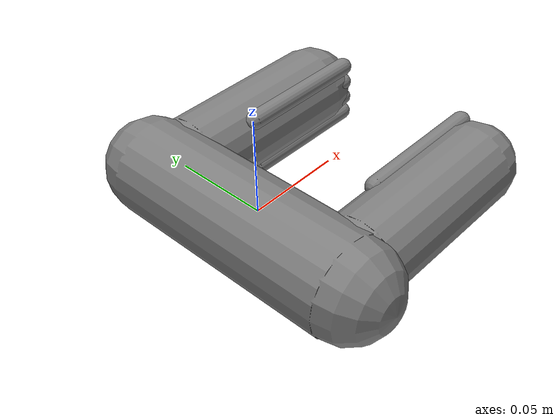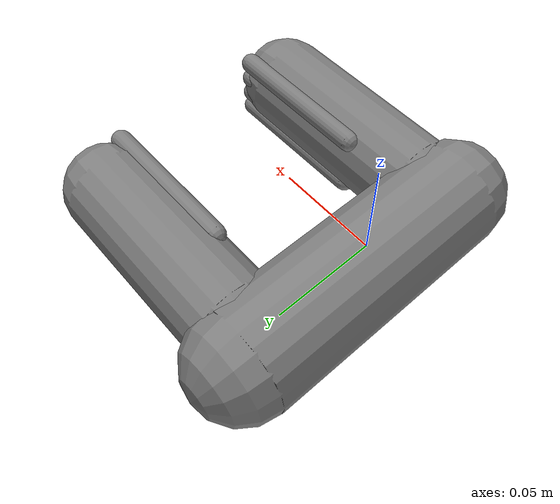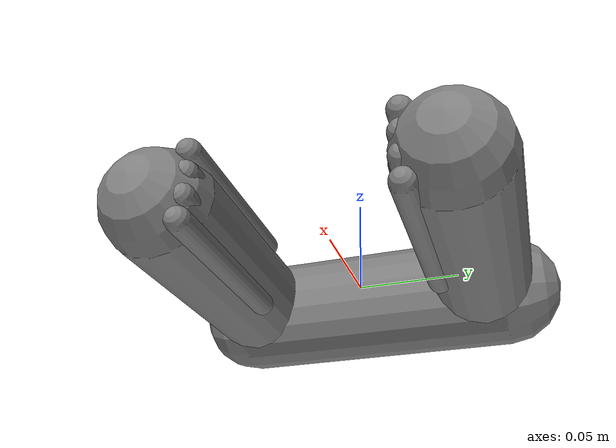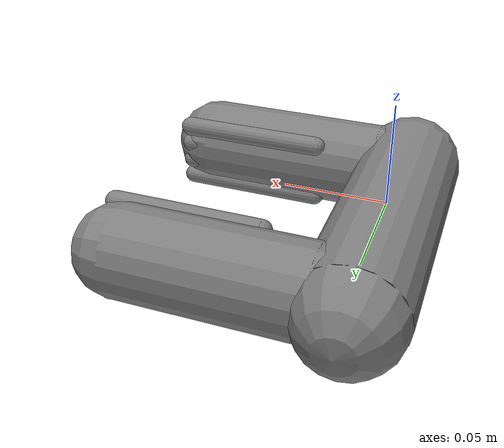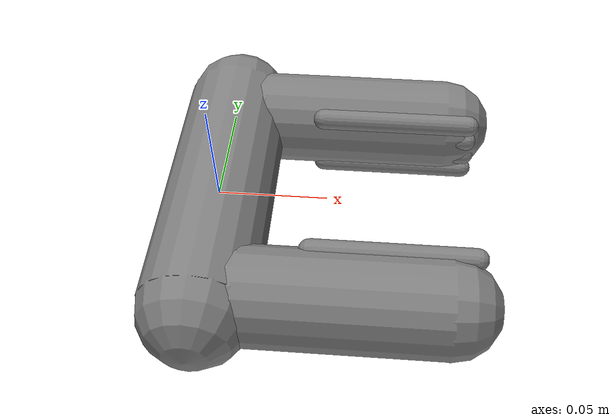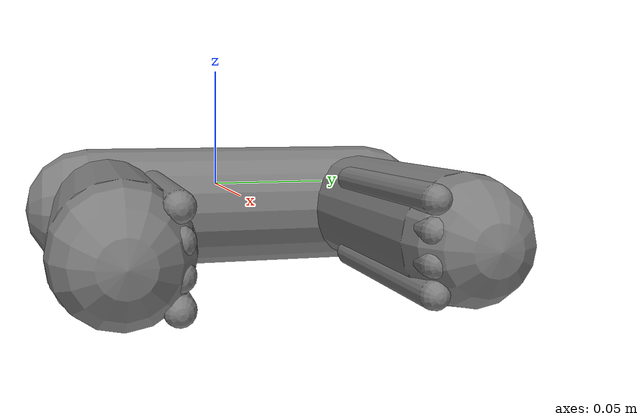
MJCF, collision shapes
<?xml version="1.0" ?>
<mujoco model="parallel_gripper">
  <compiler angle="radian" meshdir="meshes" autolimits="true"/>
  <default>
    <default class="parallel_gripper">
      <default class="visual">
        <geom group="2" type="mesh" contype="0" conaffinity="0" material="silver"/>
      </default>
      <default class="collision">
        <geom group="3" contype="1" conaffinity="1"/>
      </default>
    </default>
  </default>
  <asset>
    <material name="silver" rgba="0.75 0.75 0.75 1"/>
    <material name="base_mat" rgba="0.38 0.38 0.38 1" specular="0.15" shininess="0.1"/>
    <material name="left_rack_mat" rgba="0.3 0.31 0.34 1" specular="0.05" shininess="0.05"/>
    <material name="right_rack_mat" rgba="0.33 0.3 0.34 1" specular="0.05" shininess="0.05"/>
    <mesh name="base" file="base.obj" scale="0.001 0.001 0.001"/>
    <mesh name="left_rack" file="left_rack.obj" scale="0.001 0.001 0.001"/>
    <mesh name="right_rack" file="right_rack.obj" scale="0.001 0.001 0.001"/>
  </asset>
  <worldbody>
    <body name="base" childclass="parallel_gripper">
      <inertial mass="0.171609431065" pos="0.000733468 0.0119563 -0.00964551" diaginertia="4.99918e-05 0.000207737 0.000223325" quat="0.725257 0.023573 0.00705184 -0.688038"/>
      <geom name="base_visual" type="mesh" mesh="base" pos="0 0 0" class="visual" material="base_mat"/>
      <geom type="capsule" size="0.026 0.064" name="base_collision" pos="-0.0017 0.0075 -0.01" quat="0.707107 -0.707107 -0 0" class="collision"/>
      <body name="left_rack" pos="0 0 0">
        <inertial mass="0.07436563558" pos="0.0462025 -0.0220002 -0.00385734" diaginertia="4.74015e-05 0.00012138 0.000153873" quat="-0.0935321 0.426555 0.899548 0.0108181"/>
        <joint name="left_rack_y" type="slide" pos="0 0 0" axis="0 1 0" range="-0.05 0.0347" damping="12.0" armature="0.02"/>
        <geom name="left_rack_visual" type="mesh" mesh="left_rack" pos="0 0 0" class="visual" material="left_rack_mat"/>
        <geom type="capsule" size="0.005 0.035800000000000005" name="left_rack_collision0" pos="0.0808 -0.033 -0.0249897" quat="0.707107 -0 0.707107 0" class="collision" conaffinity="0" friction="2 0.005 0.0001" solref="0.005 1"/>
        <geom type="capsule" size="0.005 0.035800000000000005" name="left_rack_collision1" pos="0.0808 -0.033 -0.0149966" quat="0.707107 -0 0.707107 0" class="collision" conaffinity="0" friction="2 0.005 0.0001" solref="0.005 1"/>
        <geom type="capsule" size="0.005 0.035800000000000005" name="left_rack_collision2" pos="0.0808 -0.033 -0.00500342" quat="0.707107 -0 0.707107 0" class="collision" conaffinity="0" friction="2 0.005 0.0001" solref="0.005 1"/>
        <geom type="capsule" size="0.005 0.035800000000000005" name="left_rack_collision3" pos="0.0808 -0.033 0.00498975" quat="0.707107 -0 0.707107 0" class="collision" conaffinity="0" friction="2 0.005 0.0001" solref="0.005 1"/>
        <geom type="capsule" size="0.021 0.022499999999999996" name="left_rack_collision4" pos="0.0675 -0.049 -0.01" quat="0.707107 -0 0.707107 0" class="collision" conaffinity="0" friction="2 0.005 0.0001" solref="0.005 1"/>
        <geom name="left_rack_ikproxy" type="capsule" size="0.0226 0.0458" pos="0.0608 -0.0486 -0.01" quat="0.707107 -0 0.707107 0" class="collision" contype="0" conaffinity="0" group="5" friction="2 0.005 0.0001" solref="0.005 1"/>
      </body>
      <body name="right_rack" pos="0 0 0">
        <inertial mass="0.07436563558" pos="0.0461618 0.0359459 -0.0161427" diaginertia="4.73679e-05 0.000121196 0.000153672" quat="-0.0107055 0.899312 0.427027 0.0936506"/>
        <joint name="right_rack_y" type="slide" pos="0 0 0" axis="0 -1 0" range="-0.05 0.0347" damping="12.0" armature="0.02"/>
        <geom name="right_rack_visual" type="mesh" mesh="right_rack" pos="0 0 0" class="visual" material="right_rack_mat"/>
        <geom type="capsule" size="0.005 0.035800000000000005" name="right_rack_collision0" pos="0.0808 0.0469 -0.0249897" quat="0.707107 -0 0.707107 0" class="collision" conaffinity="0" friction="2 0.005 0.0001" solref="0.005 1"/>
        <geom type="capsule" size="0.005 0.035800000000000005" name="right_rack_collision1" pos="0.0808 0.0469 -0.0149966" quat="0.707107 -0 0.707107 0" class="collision" conaffinity="0" friction="2 0.005 0.0001" solref="0.005 1"/>
        <geom type="capsule" size="0.005 0.035800000000000005" name="right_rack_collision2" pos="0.0808 0.0469 -0.00500342" quat="0.707107 -0 0.707107 0" class="collision" conaffinity="0" friction="2 0.005 0.0001" solref="0.005 1"/>
        <geom type="capsule" size="0.005 0.035800000000000005" name="right_rack_collision3" pos="0.0808 0.0469 0.00498975" quat="0.707107 -0 0.707107 0" class="collision" conaffinity="0" friction="2 0.005 0.0001" solref="0.005 1"/>
        <geom type="capsule" size="0.021 0.022499999999999996" name="right_rack_collision4" pos="0.0675 0.0629 -0.01" quat="0.707107 -0 0.707107 0" class="collision" conaffinity="0" friction="2 0.005 0.0001" solref="0.005 1"/>
        <geom name="right_rack_ikproxy" type="capsule" size="0.0226 0.0458" pos="0.0608 0.0625 -0.01" quat="0.707107 -0 0.707107 0" class="collision" contype="0" conaffinity="0" group="5" friction="2 0.005 0.0001" solref="0.005 1"/>
      </body>
    </body>
  </worldbody>
  <equality>
    <joint joint1="right_rack_y" joint2="left_rack_y" polycoef="0 1 0 0 0" solref="0.005 1" solimp="0.95 0.99 0.001"/>
  </equality>
</mujoco>
